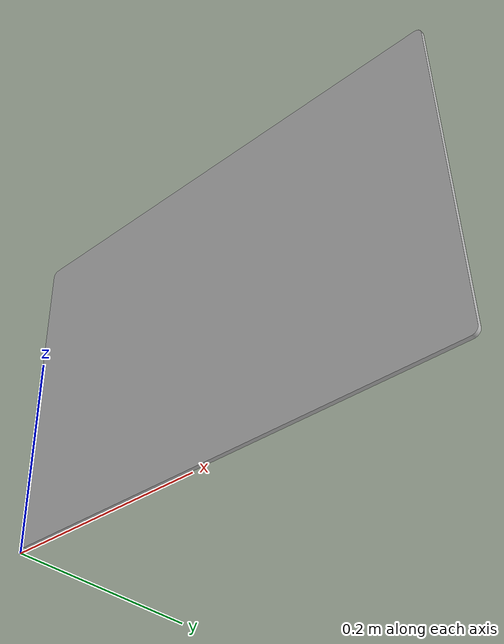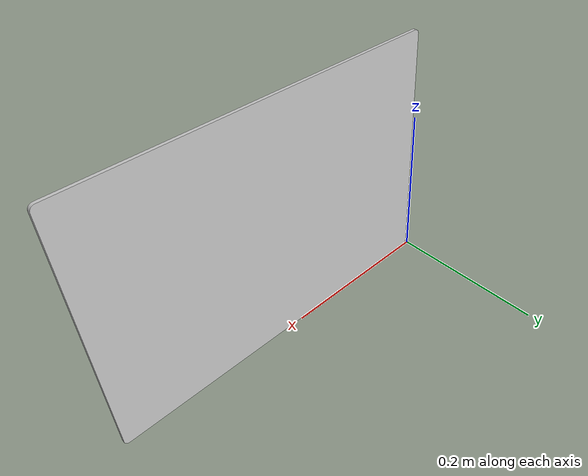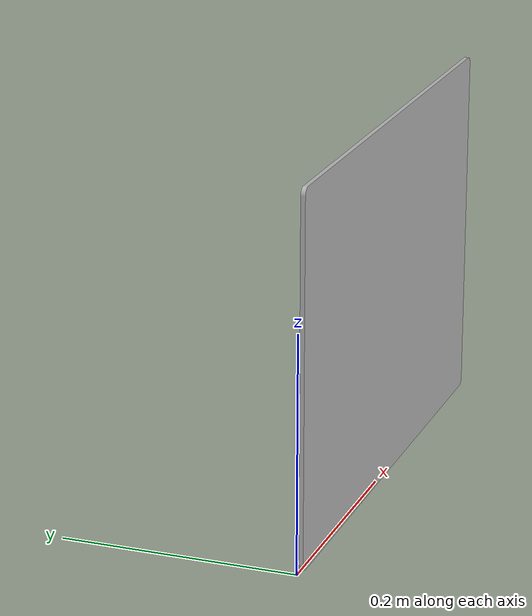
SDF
<?xml version="1.0" ?>
<sdf version="1.5">
  <model name="sign_confined_space">
    <static>true</static>
    <link name="sign_confined_space_link">
        <collision name="sign_confined_space_collision">
         <geometry>
            <mesh>
                <uri>model://sign_confined_space/meshes/model.dae</uri>
                <scale>1.5 1.5 1.5</scale>
            </mesh>
        </geometry>
      </collision>

      <visual name="sign_confined_space_mesh">
        <cast_shadows>false</cast_shadows>
        <geometry>
            <mesh>
                <uri>model://sign_confined_space/meshes/model.dae</uri>
                <scale>1.5 1.5 1.5</scale>
            </mesh>
        </geometry>
      </visual>
    </link>
  </model>
</sdf>
